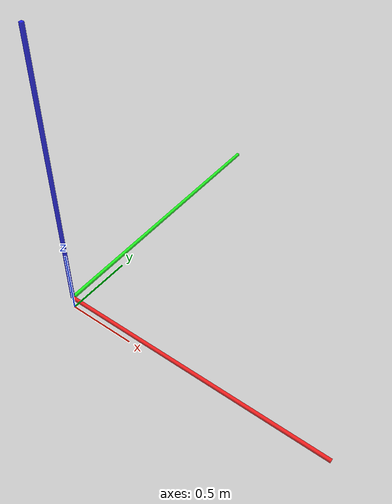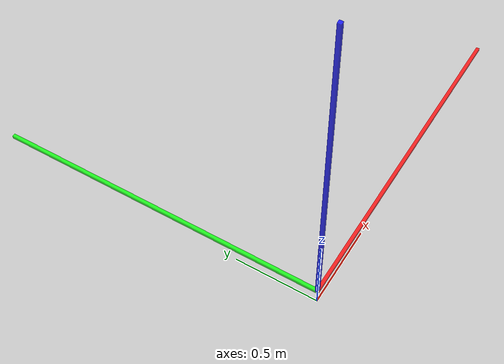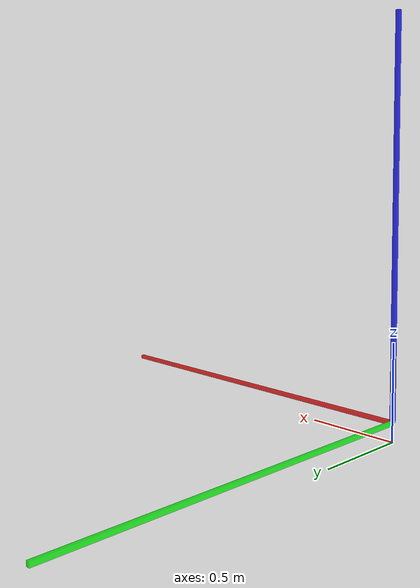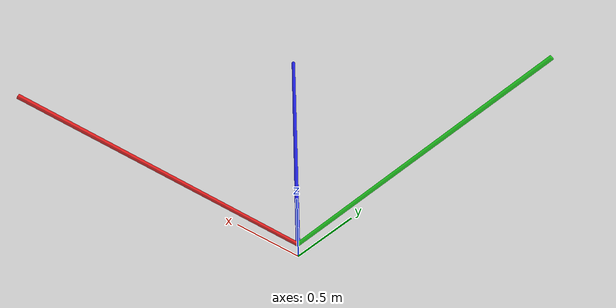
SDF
<?xml version='1.0'?>
<sdf version='1.6'>
  <model name="axes">
    <link name="link">
      <visual name="r">
        <cast_shadows>0</cast_shadows>
        <pose>1 0 0.1 0 0 0</pose>
        <geometry>
          <box>
            <size>2 0.02 0.02</size>
          </box>
        </geometry>
        <material>
          <ambient>1 0 0 0.8</ambient>
          <diffuse>1 0 0 0.8</diffuse>
          <emissive>1 0 0 0.8</emissive>
          <specular>0.5 0.5 0.5 0.8</specular>
        </material>
      </visual>
      <visual name="g">
        <cast_shadows>0</cast_shadows>
        <pose>0 1 0.1 0 0 0</pose>
        <geometry>
          <box>
            <size>0.02 2 0.02</size>
          </box>
        </geometry>
        <material>
          <ambient>0 1 0 0.8</ambient>
          <diffuse>0 1 0 0.8</diffuse>
          <emissive>0 1 0 0.8</emissive>
          <specular>0.5 0.5 0.5 0.8</specular>
        </material>
      </visual>
      <visual name="b">
        <cast_shadows>0</cast_shadows>
        <pose>0 0 1.1 0 0 0</pose>
        <geometry>
          <box>
            <size>0.02 0.02 2</size>
          </box>
        </geometry>
        <material>
          <ambient>0 0 1 0.8</ambient>
          <diffuse>0 0 1 0.8</diffuse>
          <emissive>0 0 1 0.8</emissive>
          <specular>0.5 0.5 0.5 0.8</specular>
        </material>
      </visual>
      <sensor name="navsat_sensor" type="navsat">
        <always_on>1</always_on>
        <update_rate>1</update_rate>
      </sensor>
    </link>
  </model>
</sdf>
